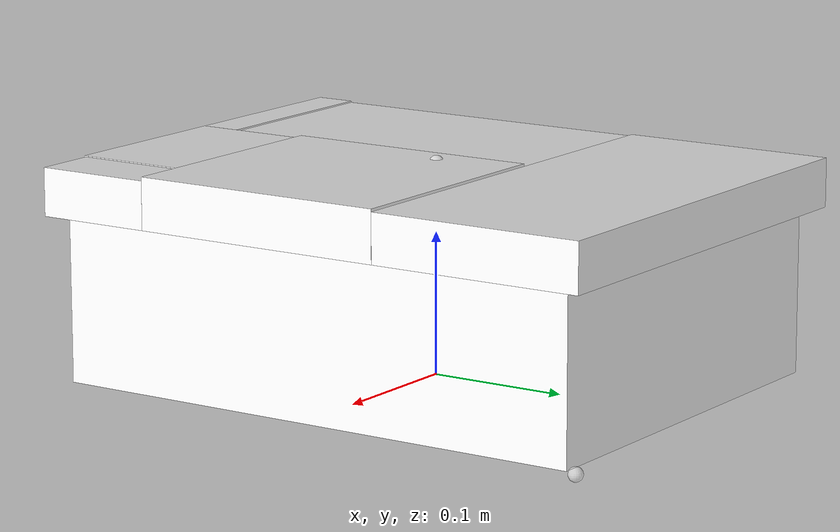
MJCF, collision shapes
<mujoco model="tote_f02">
  <default>
    <default class="visual">
      <geom group="1" type="mesh" contype="0" conaffinity="0" density="100"/>
    </default>
    <default class="collision">
      <geom group="0" type="mesh" density="100" solimp="0.95 0.98 0.001" solref="0.004 1" rgba="1 1 1 0.25"/>
    </default>
  </default>
  <asset>
    <material name="opaque__plastic__gray.002" specular="0.5" shininess="0.36" rgba="0.049953 0.049953 0.049953 1.000000"/>
    <material name="opaque__plastic__white.002" specular="0.5" shininess="0.25" rgba="0.800000 0.800000 0.800000 1.000000"/>
    <mesh file="meshes/tote_f02_0.obj" name="tote_f02_0"/>
    <mesh file="meshes/tote_f02_1.obj" name="tote_f02_1"/>
  </asset>
  <worldbody>
    <body>
      <body name="object">
        <geom mesh="tote_f02_0" material="opaque__plastic__gray.002" class="visual"/>
        <geom mesh="tote_f02_1" material="opaque__plastic__white.002" class="visual"/>
        <geom name="collider_box_54bc70f2" type="box" pos="-0.08976349500000001 -0.198407035 0.13127782999999998" size="0.014102434999999997 0.017206669999999993 0.070709455" quat="0.5 0.5000000000000001 -0.5000000000000001 -0.5000000000000001" class="collision"/>
        <geom name="collider_box_918499a4" type="box" pos="0.07087952499999998 -0.034606395 0.13224711" size="0.01817932 0.089933555 0.09279596500000001" quat="0.5 0.5 0.5000000000000001 -0.49999999999999983" class="collision"/>
        <geom name="collider_box_fcd0502b" type="box" pos="-0.089937875 -0.06305752000000002 0.13072008499999999" size="0.01665228500000001 0.070883835 0.12124708000000001" quat="0.5 0.5 0.5000000000000001 -0.49999999999999983" class="collision"/>
        <geom name="collider_box_4d90052e" type="box" pos="0.048436120000000006 -0.16996324999999998 0.13127634" size="0.01720518 0.04255256 0.06749016000000001" quat="0.7071067811865476 0.0 0.7071067811865472 -4.3297802811774695e-17" class="collision"/>
        <geom name="collider_box_4751ea91" type="box" pos="2.993400157492475e-07 -1.2669680938797519e-05 0.055876835" size="0.058179565 0.14984940031606991 0.19860407211174336" quat="0.4999728160731907 0.5000271824489578 0.4999728160731907 -0.5000271824489584" class="collision"/>
        <geom name="collider_box_b2dfc19e" type="box" pos="-2.550000000125956e-07 0.135476945 0.13127796499999997" size="0.01720680499999999 0.077272255 0.160770095" quat="0.7071067811865474 1.0015352434007616e-16 -0.7071067811865472 -1.0015352434007611e-16" class="collision"/>
        <geom name="collider_box_eef91dcd" type="box" pos="0.13837 -0.16915677 0.130901915" size="0.016834125000000012 0.022443719999999986 0.04174625" quat="0.5 0.5 0.5000000000000001 -0.49999999999999983" class="collision"/>
      </body>
      <site name="bottom_site" pos="0 0 5e-06" rgba="1 1 1 0.5" size="0.005"/>
      <site name="top_site" pos="0 0 0.148137" rgba="1 1 1 0.5" size="0.005"/>
      <site name="horizontal_radius_site" pos="0.158959 0.210955 0" rgba="1 1 1 0.5" size="0.005"/>
    </body>
  </worldbody>
</mujoco>
